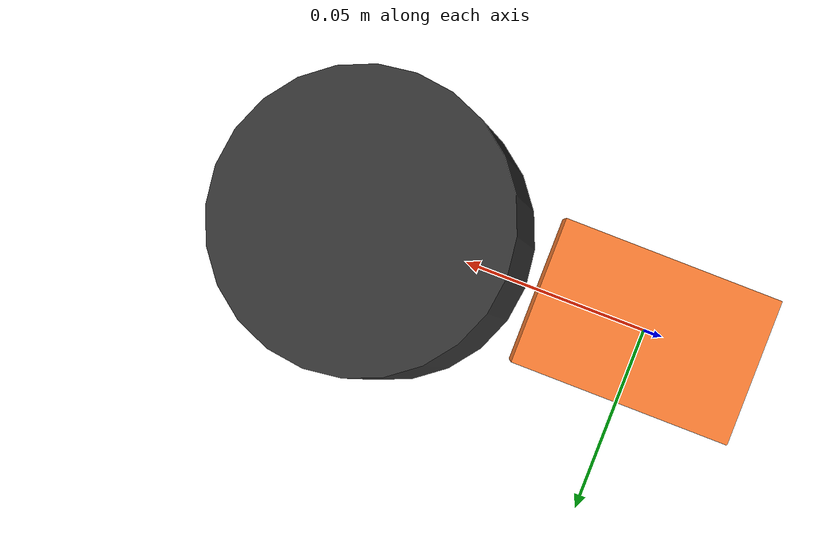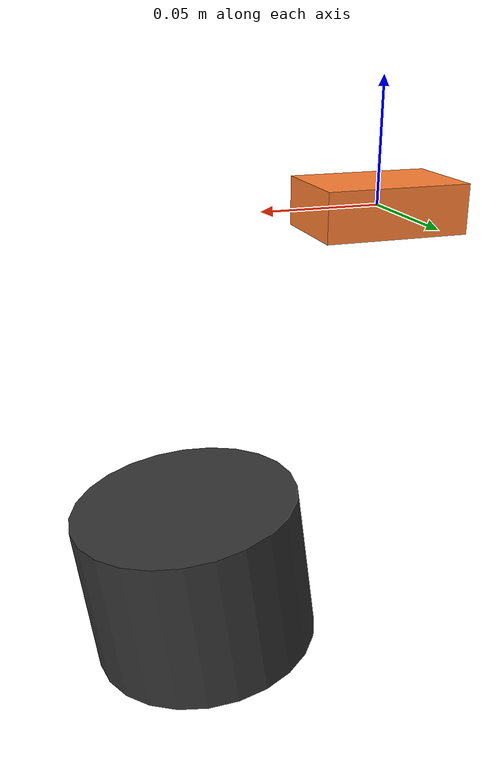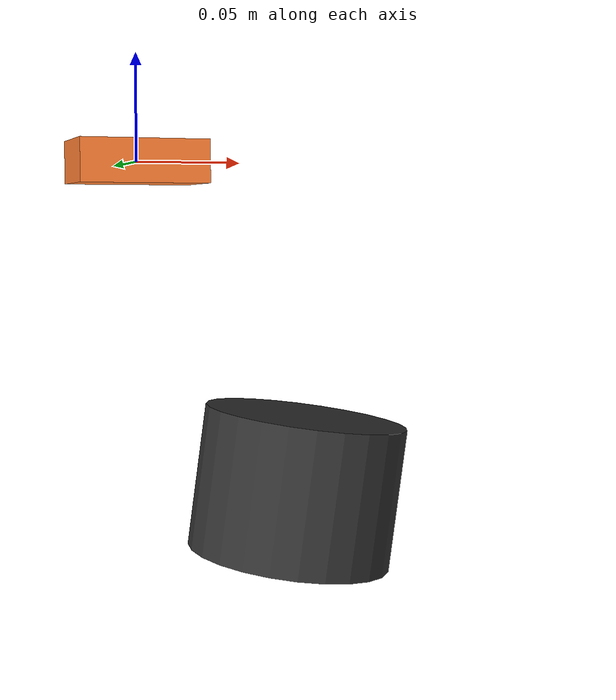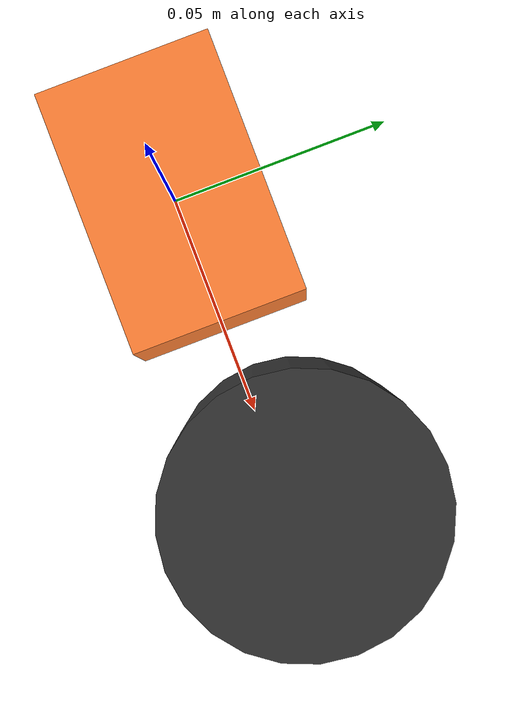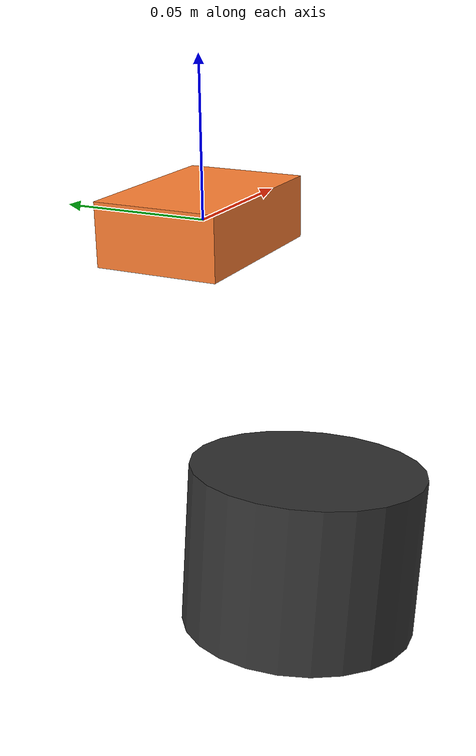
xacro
<?xml version="1.0"?>
<robot name="stencil" xmlns:xacro="http://ros.org/wiki/xacro">
  <xacro:arg name="namespace" default="none"/>
  <xacro:property name="namespace" value="$(arg namespace)" />

  <material name="orange">
    <color rgba="1.0 0.5 0.2 1" />
  </material>
  <material name="gray">
    <color rgba="0.2 0.2 0.2 1" />
  </material>

  <link name="${namespace}/imu_link">
    <visual>
      <origin xyz="0.0 0.0 0.0" />
      <geometry>
        <box size="0.06 0.04 0.02" />
      </geometry>
      <material name="orange" />
    </visual>
  </link>

  <link name="${namespace}/velodyne">
    <visual>
      <origin xyz="0.0 0.0 0.0" />
      <geometry>
        <cylinder length="0.07" radius="0.05" />
      </geometry>
      <material name="gray" />
    </visual>
  </link>

  <link name="${namespace}/base_link" />

  <joint name="${namespace}/imu_link_joint" type="fixed">
    <parent link="${namespace}/base_link" />
    <child link="${namespace}/imu_link" />
    <origin xyz="0 0 0" rpy="0 0 0" />
  </joint>

  <joint name="${namespace}/velodyne_link_joint" type="fixed">
    <parent link="${namespace}/base_link" />
    <child link="${namespace}/velodyne" />
    <origin xyz="0.08 0. -0.1578" rpy="3.151592653589793 0.1323284641020683 0." /> <!-- Horizontalni postav -->
    <!-- origin xyz="0.065 0. -0.135" rpy="1.570796 0. -1.570796" / --> <!-- Vertikalni postav -->
  </joint>

</robot>
